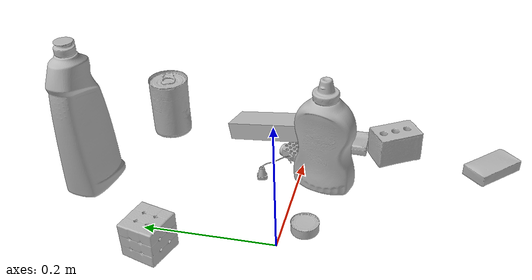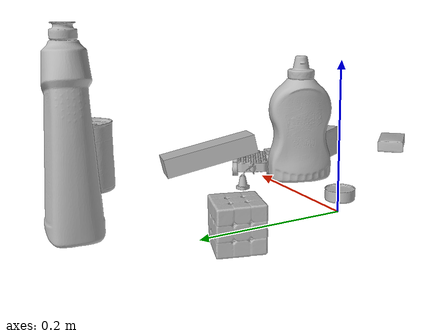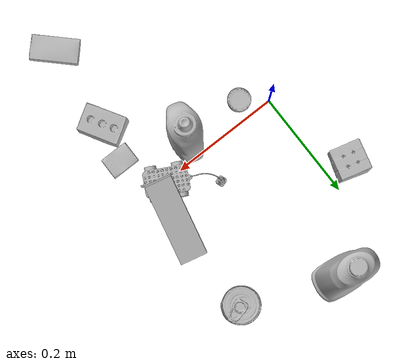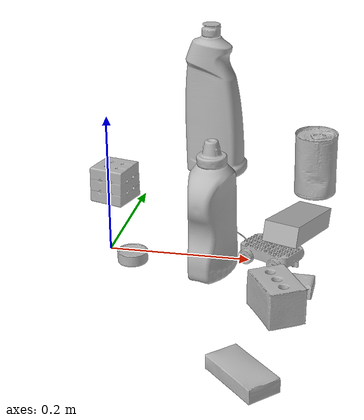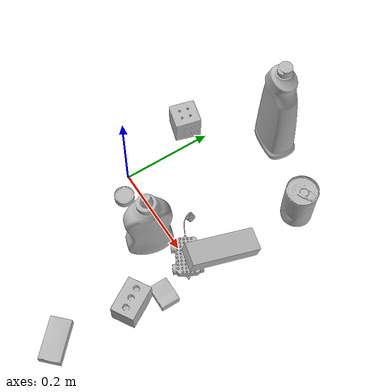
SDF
<sdf version="1.4">
  <world name="default">
    <light name="light1" type="point">
      <pose>0 0 1 0 0 0</pose>
      <diffuse>3 3 3 1</diffuse>
      <specular>3 3 3 1</specular>
    </light>
    <light name="light2" type="point">
      <pose>0 0.5 2 0 0 0</pose>
      <diffuse>1 1 1 1</diffuse>
      <specular>1 1 1 1</specular>
    </light>
    <light name="light3" type="point">
      <pose>0 0.5 2 0 0 0</pose>
      <diffuse>3 3 3 1</diffuse>
      <specular>3 3 3 1</specular>
    </light>
    <scene>
      <ambient>0.7 0.7 0.7</ambient>
    </scene>
    <model name="bottle1">
      <link name="link_bottle1">
        <collision name="default">
          <geometry>
            <mesh>
              <uri>model://bleach_cleanser/collision_meshes/collision.obj</uri>
              <scale>1.0 1.0 1.0</scale>
            </mesh>
          </geometry>
          <surface>
            <friction>
              <ode>
                <mu>0.5</mu>
                <mu2>0.5</mu2>
              </ode>
            </friction>
          <contact>
        <ode>
            <max_vel>0</max_vel>
            <min_depth>0.0001</min_depth>
            <kp>1e8</kp>
        </ode>
    </contact></surface>
        </collision>
        <visual name="default">
          <geometry>
            <mesh>
              <uri>model://bleach_cleanser/visual_meshes/visual.dae</uri>
              <scale>1.0 1.0 1.0</scale>
            </mesh>
          </geometry>
        </visual>
        <inertial>
          <mass>1.2697166204452515</mass>
          <pose>0.00012193183647468686 0.003783883061259985 -0.02442161738872528 -0.07381670616315505 0.00042011510954057825 -0.0068750724928957506</pose>
          <inertia>
            <ixx>0.0061798943</ixx>
            <iyy>0.0057587572</iyy>
            <izz>0.0010566014</izz>
            <ixy>0</ixy>
            <ixz>0</ixz>
            <iyz>0</iyz>
          </inertia>
        </inertial>
      </link>
      <pose>0.09202011674642563 0.3203193247318268 0.12578411400318146 -0.00019978667499021512 1.6765800682243888e-05 1.4534074087400728</pose>
    </model>
    <model name="bottle2">
      <link name="link_bottle2">
        <collision name="default">
          <geometry>
            <mesh>
              <uri>model://mustard_bottle/collision_meshes/collision.obj</uri>
              <scale>1.0 1.0 1.0</scale>
            </mesh>
          </geometry>
          <surface>
            <friction>
              <ode>
                <mu>0.5</mu>
                <mu2>0.5</mu2>
              </ode>
            </friction>
          <contact>
        <ode>
            <max_vel>0</max_vel>
            <min_depth>0.0001</min_depth>
            <kp>1e8</kp>
        </ode>
    </contact></surface>
        </collision>
        <visual name="default">
          <geometry>
            <mesh>
              <uri>model://mustard_bottle/visual_meshes/visual.dae</uri>
              <scale>1.0 1.0 1.0</scale>
            </mesh>
          </geometry>
        </visual>
        <inertial>
          <mass>0.7653017640113831</mass>
          <pose>0.000503245391882956 -0.00015647402324248105 -0.01747579500079155 0.0004182327658992807 0.0009465785893850277 0.024853714910462506</pose>
          <inertia>
            <ixx>0.0021251384</ixx>
            <iyy>0.0018646289</iyy>
            <izz>0.0005600813</izz>
            <ixy>0</ixy>
            <ixz>0</ixz>
            <iyz>0</iyz>
          </inertia>
        </inertial>
      </link>
      <pose>0.15662862360477448 -0.04183247312903404 0.09617282450199127 -0.007022443353561671 0.006874575544500194 2.8592875984022013</pose>
    </model>
    <model name="toy1">
      <link name="link_toy1">
        <collision name="default">
          <geometry>
            <mesh>
              <uri>model://g_lego_duplo/collision_meshes/collision.obj</uri>
              <scale>0.5 0.5 0.5</scale>
            </mesh>
          </geometry>
          <surface>
            <friction>
              <ode>
                <mu>0.5</mu>
                <mu2>0.5</mu2>
              </ode>
            </friction>
          <contact>
        <ode>
            <max_vel>0</max_vel>
            <min_depth>0.0001</min_depth>
            <kp>1e8</kp>
        </ode>
    </contact></surface>
        </collision>
        <visual name="default">
          <geometry>
            <mesh>
              <uri>model://g_lego_duplo/visual_meshes/visual.dae</uri>
              <scale>0.5 0.5 0.5</scale>
            </mesh>
          </geometry>
        </visual>
        <inertial>
          <mass>0.058442164212465286</mass>
          <pose>-0.025023842230439186 0.0008777315961197019 0.0019403378246352077 0.010962970283690966 0.0381082459421261 -0.09653034831594848</pose>
          <inertia>
            <ixx>2.1170836e-05</ixx>
            <iyy>6.4006235e-05</iyy>
            <izz>8.007422e-05</izz>
            <ixy>0</ixy>
            <ixz>0</ixz>
            <iyz>0</iyz>
          </inertia>
        </inertial>
      </link>
      <pose>0.20608770847320557 0.017224766314029694 0.0148753821849823 0.004107755110416356 -0.0008487575466763816 2.654144873852624</pose>
    </model>
    <model name="toy2">
      <link name="link_toy2">
        <collision name="default">
          <geometry>
            <mesh>
              <uri>model://foam_brick/collision_meshes/collision.obj</uri>
              <scale>1.0 1.0 1.0</scale>
            </mesh>
          </geometry>
          <surface>
            <friction>
              <ode>
                <mu>0.5</mu>
                <mu2>0.5</mu2>
              </ode>
            </friction>
          <contact>
        <ode>
            <max_vel>0</max_vel>
            <min_depth>0.0001</min_depth>
            <kp>1e8</kp>
        </ode>
    </contact></surface>
        </collision>
        <visual name="default">
          <geometry>
            <mesh>
              <uri>model://foam_brick/visual_meshes/visual.dae</uri>
              <scale>1.0 1.0 1.0</scale>
            </mesh>
          </geometry>
        </visual>
        <inertial>
          <mass>0.20487983524799347</mass>
          <pose>-0.0002522472059354186 0.0003458437859080732 -0.0002532101352699101 -0.2940200921298176 0.01727444945267686 -0.0007449878655710941</pose>
          <inertia>
            <ixx>8.9495355e-05</ixx>
            <iyy>0.0001428839</iyy>
            <izz>0.00014469978</izz>
            <ixy>0</ixy>
            <ixz>0</ixz>
            <iyz>0</iyz>
          </inertia>
        </inertial>
      </link>
      <pose>0.2590571343898773 -0.14461037516593933 0.02592279389500618 0.013417113997427042 0.0041529880396024505 2.1087001450096032</pose>
    </model>
    <model name="can1">
      <link name="link_can1">
        <collision name="default">
          <geometry>
            <mesh>
              <uri>model://tuna_fish_can/collision_meshes/collision.obj</uri>
              <scale>0.5 0.5 0.5</scale>
            </mesh>
          </geometry>
          <surface>
            <friction>
              <ode>
                <mu>0.5</mu>
                <mu2>0.5</mu2>
              </ode>
            </friction>
          <contact>
        <ode>
            <max_vel>0</max_vel>
            <min_depth>0.0001</min_depth>
            <kp>1e8</kp>
        </ode>
    </contact></surface>
        </collision>
        <visual name="default">
          <geometry>
            <mesh>
              <uri>model://tuna_fish_can/visual_meshes/visual.dae</uri>
              <scale>0.5 0.5 0.5</scale>
            </mesh>
          </geometry>
        </visual>
        <inertial>
          <mass>0.012491201050579548</mass>
          <pose>-2.036202567978762e-05 -7.256427124957554e-06 -0.0005269025568850338 -0.0017944782936896576 0.0001716245920406042 0.24054207470378652</pose>
          <inertia>
            <ixx>1.6888293e-06</ixx>
            <iyy>1.6817903e-06</iyy>
            <izz>2.889828e-06</izz>
            <ixy>0</ixy>
            <ixz>0</ixz>
            <iyz>0</iyz>
          </inertia>
        </inertial>
      </link>
      <pose>0.04091111570596695 -0.033650945872068405 0.00851999968290329 -1.8839892957042027e-08 -9.544110937044372e-09 1.8687255079710905</pose>
    </model>
    <model name="can2">
      <link name="link_can2">
        <collision name="default">
          <geometry>
            <mesh>
              <uri>model://tomato_soup_can/collision_meshes/collision.obj</uri>
              <scale>1.0 1.0 1.0</scale>
            </mesh>
          </geometry>
          <surface>
            <friction>
              <ode>
                <mu>0.5</mu>
                <mu2>0.5</mu2>
              </ode>
            </friction>
          <contact>
        <ode>
            <max_vel>0</max_vel>
            <min_depth>0.0001</min_depth>
            <kp>1e8</kp>
        </ode>
    </contact></surface>
        </collision>
        <visual name="default">
          <geometry>
            <mesh>
              <uri>model://tomato_soup_can/visual_meshes/visual.dae</uri>
              <scale>1.0 1.0 1.0</scale>
            </mesh>
          </geometry>
        </visual>
        <inertial>
          <mass>0.1827235370874405</mass>
          <pose>0.00012652271834667772 0.00010805515921674669 -0.0017973986687138677 0.007020070640758328 0.00042299385100205743 -0.009903366123441316</pose>
          <inertia>
            <ixx>0.00020034082</ixx>
            <iyy>0.00019918295</iyy>
            <izz>0.00010383482</izz>
            <ixy>0</ixy>
            <ixz>0</ixz>
            <iyz>0</iyz>
          </inertia>
        </inertial>
      </link>
      <pose>0.2653651237487793 0.2531893849372864 0.05127401277422905 -3.137173235193326e-07 -6.562495736895878e-07 1.6506316777507237</pose>
    </model>
    <model name="box1">
      <link name="link_box1">
        <collision name="default">
          <geometry>
            <mesh>
              <uri>model://jenga/collision_meshes/collision.obj</uri>
              <scale>1.0 1.0 1.0</scale>
            </mesh>
          </geometry>
          <surface>
            <friction>
              <ode>
                <mu>0.5</mu>
                <mu2>0.5</mu2>
              </ode>
            </friction>
          <contact>
        <ode>
            <max_vel>0</max_vel>
            <min_depth>0.0001</min_depth>
            <kp>1e8</kp>
        </ode>
    </contact></surface>
        </collision>
        <visual name="default">
          <geometry>
            <mesh>
              <uri>model://jenga/visual_meshes/visual.dae</uri>
              <scale>1.0 1.0 1.0</scale>
            </mesh>
          </geometry>
        </visual>
        <inertial>
          <mass>0.23032541573047638</mass>
          <pose>-2.502855807051674e-07 -0.00010250010382151231 -4.0923401684267446e-05 0.0 -7.342154049184251e-07 0.0</pose>
          <inertia>
            <ixx>6.3736625e-05</ixx>
            <iyy>0.00043187768</iyy>
            <izz>0.00046106614</izz>
            <ixy>0</ixy>
            <ixz>0</ixz>
            <iyz>0</iyz>
          </inertia>
        </inertial>
      </link>
      <pose>0.26055577397346497 0.06523071974515915 0.03142150118947029 -0.05486738794642734 -0.21104111962474426 -1.7899143966174837</pose>
    </model>
    <model name="box2">
      <link name="link_box2">
        <collision name="default">
          <geometry>
            <mesh>
              <uri>model://cracker_box/collision_meshes/collision.obj</uri>
              <scale>0.25 0.25 0.25</scale>
            </mesh>
          </geometry>
          <surface>
            <friction>
              <ode>
                <mu>0.5</mu>
                <mu2>0.5</mu2>
              </ode>
            </friction>
          <contact>
        <ode>
            <max_vel>0</max_vel>
            <min_depth>0.0001</min_depth>
            <kp>1e8</kp>
        </ode>
    </contact></surface>
        </collision>
        <visual name="default">
          <geometry>
            <mesh>
              <uri>model://cracker_box/visual_meshes/visual.dae</uri>
              <scale>0.25 0.25 0.25</scale>
            </mesh>
          </geometry>
        </visual>
        <inertial>
          <mass>0.037928901612758636</mass>
          <pose>0.0002366034168517217 6.358561222441494e-05 -0.000425738311605528 -0.00031620771242973385 -0.011106489600347247 0.002546794536796529</pose>
          <inertia>
            <ixx>6.029637e-06</ixx>
            <iyy>9.956116e-06</iyy>
            <izz>1.420829e-05</izz>
            <ixy>0</ixy>
            <ixz>0</ixz>
            <iyz>0</iyz>
          </inertia>
        </inertial>
      </link>
      <pose>0.27294591069221497 -0.07884687185287476 0.009120454080402851 -0.011788009180407871 -0.007367164240686127 3.1319183158184276</pose>
    </model>
    <model name="box3">
      <link name="link_box3">
        <collision name="default">
          <geometry>
            <mesh>
              <uri>model://sugar_box/collision_meshes/collision.obj</uri>
              <scale>0.5 0.5 0.5</scale>
            </mesh>
          </geometry>
          <surface>
            <friction>
              <ode>
                <mu>0.5</mu>
                <mu2>0.5</mu2>
              </ode>
            </friction>
          <contact>
        <ode>
            <max_vel>0</max_vel>
            <min_depth>0.0001</min_depth>
            <kp>1e8</kp>
        </ode>
    </contact></surface>
        </collision>
        <visual name="default">
          <geometry>
            <mesh>
              <uri>model://sugar_box/visual_meshes/visual.dae</uri>
              <scale>0.5 0.5 0.5</scale>
            </mesh>
          </geometry>
        </visual>
        <inertial>
          <mass>0.11577744781970978</mass>
          <pose>0.0005171863595023751 1.9245549992774613e-05 -0.00018182402709499002 -0.0004046260967602003 0.0010506636382171825 0.002615378323343388</pose>
          <inertia>
            <ixx>2.4116362e-05</ixx>
            <iyy>7.7949044e-05</iyy>
            <izz>9.3314295e-05</izz>
            <ixy>0</ixy>
            <ixz>0</ixz>
            <iyz>0</iyz>
          </inertia>
        </inertial>
      </link>
      <pose>0.2425266057252884 -0.30612486600875854 0.011399304494261742 0.0007759083970231795 -0.023432942810665675 2.3585958517526393</pose>
    </model>
    <model name="box4">
      <link name="link_box4">
        <collision name="default">
          <geometry>
            <mesh>
              <uri>model://rubiks_cube/collision_meshes/collision.obj</uri>
              <scale>1.0 1.0 1.0</scale>
            </mesh>
          </geometry>
          <surface>
            <friction>
              <ode>
                <mu>0.5</mu>
                <mu2>0.5</mu2>
              </ode>
            </friction>
          <contact>
        <ode>
            <max_vel>0</max_vel>
            <min_depth>0.0001</min_depth>
            <kp>1e8</kp>
        </ode>
    </contact></surface>
        </collision>
        <visual name="default">
          <geometry>
            <mesh>
              <uri>model://rubiks_cube/visual_meshes/visual.dae</uri>
              <scale>1.0 1.0 1.0</scale>
            </mesh>
          </geometry>
        </visual>
        <inertial>
          <mass>0.277982622385025</mass>
          <pose>2.6721041649580002e-05 5.2569666877388954e-05 -7.264316082000732e-06 -0.05467259342135701 -0.09814005995908277 -0.03445491653702878</pose>
          <inertia>
            <ixx>0.00015360407</ixx>
            <iyy>0.00015288773</iyy>
            <izz>0.00015487692</izz>
            <ixy>0</ixy>
            <ixz>0</ixz>
            <iyz>0</iyz>
          </inertia>
        </inertial>
      </link>
      <pose>-0.04225825145840645 0.17236922681331635 0.028678998351097107 -2.3665028437696387e-06 2.3544924678552065e-07 -1.834716764740295</pose>
    </model>
  <physics type="ode">
      <max_contacts>50</max_contacts>
      <ode>
        <solver>
          <type>quick</type>
          <iters>75</iters>
        </solver>
        <constraints>
          <contact_max_correcting_vel>0</contact_max_correcting_vel>
          <contact_surface_layer>0</contact_surface_layer>
        </constraints>
      </ode>
    </physics></world>
</sdf>
